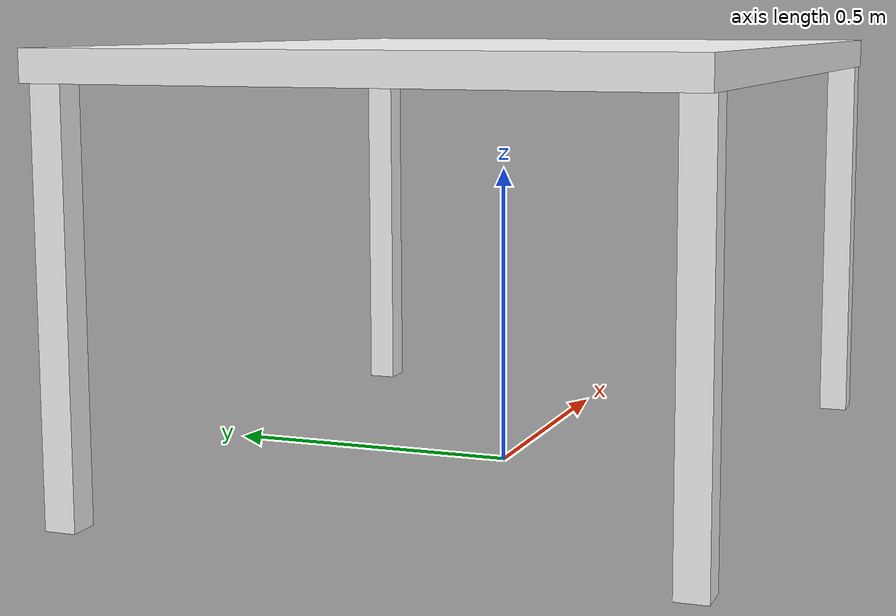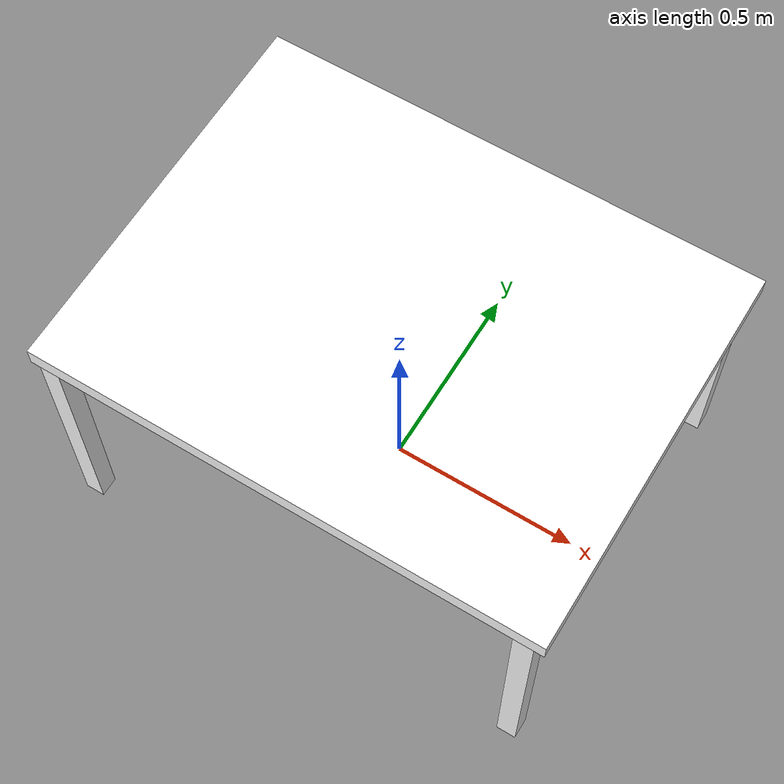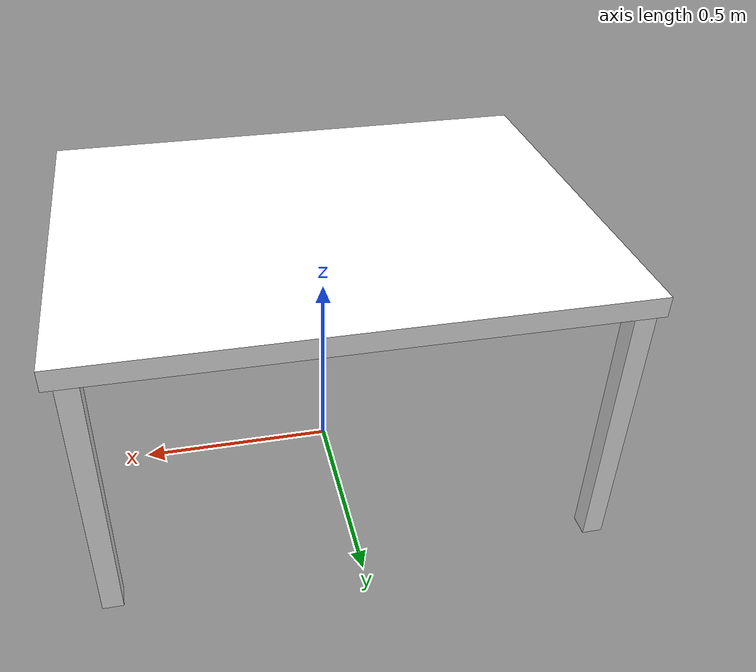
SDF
<?xml version='1.0'?>
<sdf version="1.4">
<model name="hri_desk">
  <pose>0 0 0 0 0 0</pose>
  <static>true</static>

    <link name="wall1">
      <pose>0 0 0.685 0 0 0</pose>
      <inertial>
        <mass>1000.0</mass>
        <inertia> <!-- interias are tricky to compute -->
          <!-- http://answers.gazebosim.org/question/4372/the-inertia-matrix-explained/ -->
          <ixx>0.083</ixx>       <!-- for a box: ixx = 0.083 * mass * (y*y + z*z) -->
          <ixy>0.0</ixy>         <!-- for a box: ixy = 0 -->
          <ixz>0.0</ixz>         <!-- for a box: ixz = 0 -->
          <iyy>0.083</iyy>       <!-- for a box: iyy = 0.083 * mass * (x*x + z*z) -->
          <iyz>0.0</iyz>         <!-- for a box: iyz = 0 -->
          <izz>0.083</izz>       <!-- for a box: izz = 0.083 * mass * (x*x + y*y) -->
        </inertia>
      </inertial>
      <collision name="collision">
        <geometry>
          <box>
            <size>1.3    1.0    0.05</size>
          </box>
        </geometry>
      </collision>
      <visual name="visual">
        <geometry>
          <box>
            <size>1.3    1.0    0.05</size>
          </box>
        </geometry>
	<material>
          <ambient>0.5 0.5 0.3 1</ambient>
          <diffuse>1 1 1 1</diffuse>
          <specular>0.1 0.1 0.1 1</specular>
          <emissive>0 0 0 0</emissive>
        </material>
      </visual>
    </link>

    <link name="wall2">
      <pose>0.6    0.475    0.33 0 0 0</pose>
      <inertial>
        <mass>1000.0</mass>
        <inertia> <!-- interias are tricky to compute -->
          <!-- http://answers.gazebosim.org/question/4372/the-inertia-matrix-explained/ -->
          <ixx>0.083</ixx>       <!-- for a box: ixx = 0.083 * mass * (y*y + z*z) -->
          <ixy>0.0</ixy>         <!-- for a box: ixy = 0 -->
          <ixz>0.0</ixz>         <!-- for a box: ixz = 0 -->
          <iyy>0.083</iyy>       <!-- for a box: iyy = 0.083 * mass * (x*x + z*z) -->
          <iyz>0.0</iyz>         <!-- for a box: iyz = 0 -->
          <izz>0.083</izz>       <!-- for a box: izz = 0.083 * mass * (x*x + y*y) -->
        </inertia>
      </inertial>
      <collision name="collision">
        <geometry>
          <box>
            <size>0.0500    0.0500    0.66</size>
          </box>
        </geometry>
      </collision>
      <visual name="visual">
        <geometry>
          <box>
            <size>0.0500    0.0500    0.66</size>
          </box>
        </geometry>
	<material>
          <ambient>1 1 0.5 1</ambient>
          <diffuse>1 1 1 1</diffuse>
          <specular>0.1 0.1 0.1 1</specular>
          <emissive>0 0 0 0</emissive>
        </material>
      </visual>
    </link>

    <link name="wall3">
      <pose>0.6    -0.475    0.33 0 0 0</pose>
      <inertial>
        <mass>1000.0</mass>
        <inertia> <!-- interias are tricky to compute -->
          <!-- http://answers.gazebosim.org/question/4372/the-inertia-matrix-explained/ -->
          <ixx>0.083</ixx>       <!-- for a box: ixx = 0.083 * mass * (y*y + z*z) -->
          <ixy>0.0</ixy>         <!-- for a box: ixy = 0 -->
          <ixz>0.0</ixz>         <!-- for a box: ixz = 0 -->
          <iyy>0.083</iyy>       <!-- for a box: iyy = 0.083 * mass * (x*x + z*z) -->
          <iyz>0.0</iyz>         <!-- for a box: iyz = 0 -->
          <izz>0.083</izz>       <!-- for a box: izz = 0.083 * mass * (x*x + y*y) -->
        </inertia>
      </inertial>
      <collision name="collision">
        <geometry>
          <box>
            <size>0.0500    0.0500    0.66</size>
          </box>
        </geometry>
      </collision>
      <visual name="visual">
        <geometry>
          <box>
            <size>0.0500    0.0500    0.66</size>
          </box>
        </geometry>
	<material>
          <ambient>1 1 0.5 1</ambient>
          <diffuse>1 1 1 1</diffuse>
          <specular>0.1 0.1 0.1 1</specular>
          <emissive>0 0 0 0</emissive>
        </material>
      </visual>
    </link>

    <link name="wall4">
      <pose>-0.6    -0.475    0.33 0 0 0</pose>
      <inertial>
        <mass>1000.0</mass>
        <inertia> <!-- interias are tricky to compute -->
          <!-- http://answers.gazebosim.org/question/4372/the-inertia-matrix-explained/ -->
          <ixx>0.083</ixx>       <!-- for a box: ixx = 0.083 * mass * (y*y + z*z) -->
          <ixy>0.0</ixy>         <!-- for a box: ixy = 0 -->
          <ixz>0.0</ixz>         <!-- for a box: ixz = 0 -->
          <iyy>0.083</iyy>       <!-- for a box: iyy = 0.083 * mass * (x*x + z*z) -->
          <iyz>0.0</iyz>         <!-- for a box: iyz = 0 -->
          <izz>0.083</izz>       <!-- for a box: izz = 0.083 * mass * (x*x + y*y) -->
        </inertia>
      </inertial>
      <collision name="collision">
        <geometry>
          <box>
            <size>0.0500    0.0500    0.66</size>
          </box>
        </geometry>
      </collision>
      <visual name="visual">
        <geometry>
          <box>
            <size>0.0500    0.0500    0.66</size>
          </box>
        </geometry>
	<material>
          <ambient>1 1 0.5 1</ambient>
          <diffuse>1 1 1 1</diffuse>
          <specular>0.1 0.1 0.1 1</specular>
          <emissive>0 0 0 0</emissive>
        </material>
      </visual>
    </link>

    <link name="wall5">
      <pose>-0.6    0.475    0.33 0 0 0</pose>
      <inertial>
        <mass>1000.0</mass>
        <inertia> <!-- interias are tricky to compute -->
          <!-- http://answers.gazebosim.org/question/4372/the-inertia-matrix-explained/ -->
          <ixx>0.083</ixx>       <!-- for a box: ixx = 0.083 * mass * (y*y + z*z) -->
          <ixy>0.0</ixy>         <!-- for a box: ixy = 0 -->
          <ixz>0.0</ixz>         <!-- for a box: ixz = 0 -->
          <iyy>0.083</iyy>       <!-- for a box: iyy = 0.083 * mass * (x*x + z*z) -->
          <iyz>0.0</iyz>         <!-- for a box: iyz = 0 -->
          <izz>0.083</izz>       <!-- for a box: izz = 0.083 * mass * (x*x + y*y) -->
        </inertia>
      </inertial>
      <collision name="collision">
        <geometry>
          <box>
            <size>0.0500    0.0500    0.66</size>
          </box>
        </geometry>
      </collision>
      <visual name="visual">
        <geometry>
          <box>
            <size>0.0500    0.0500    0.66</size>
          </box>
        </geometry>
	<material>
          <ambient>1 1 0.5 1</ambient>
          <diffuse>1 1 1 1</diffuse>
          <specular>0.1 0.1 0.1 1</specular>
          <emissive>0 0 0 0</emissive>
        </material>
      </visual>
    </link>

  </model>
</sdf>
